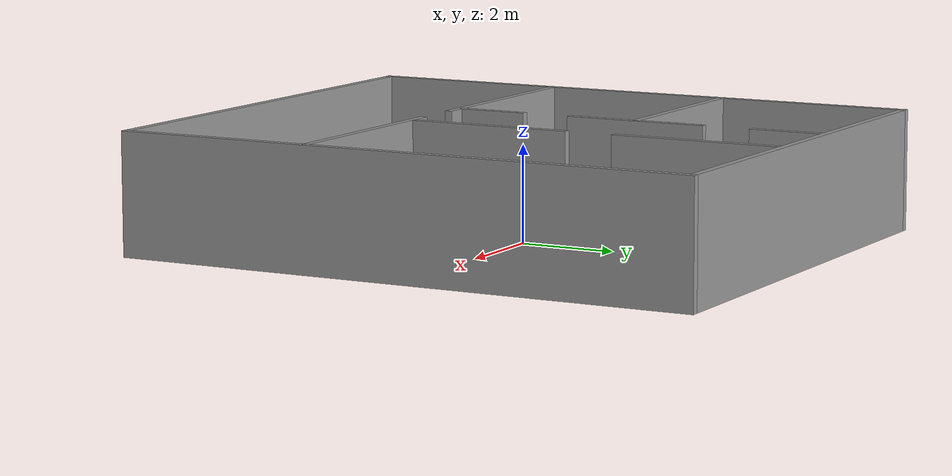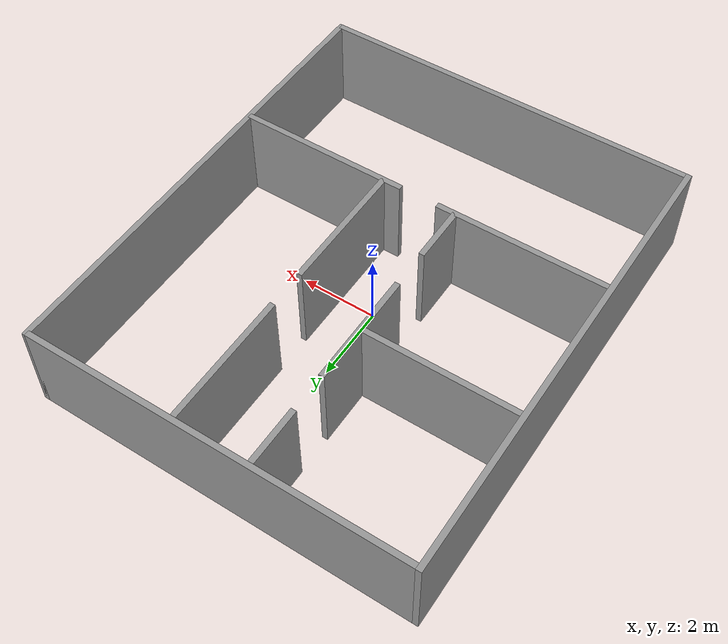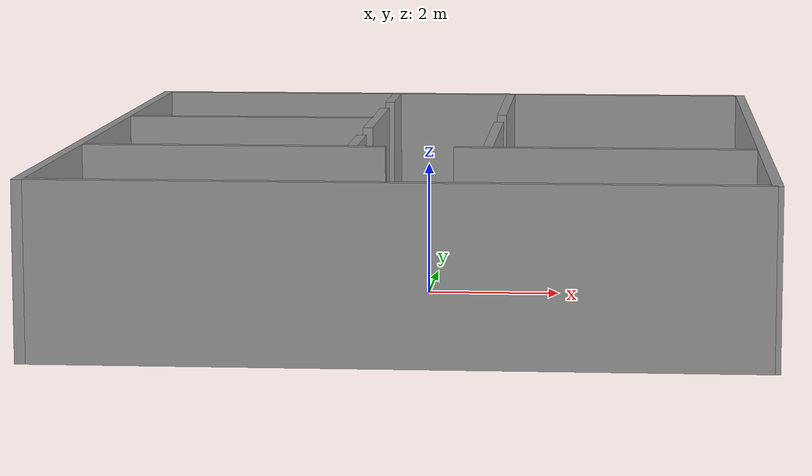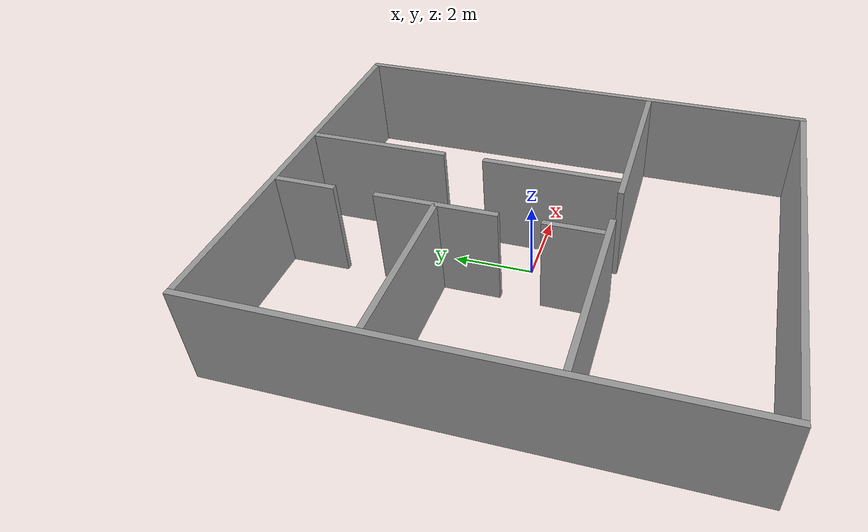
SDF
<?xml version='1.0'?>
<sdf version='1.6'>
  <model name='office'>
    <pose frame=''>0 0 0 0 0 0</pose>
    <link name='Wall_0'>
      <collision name='Wall_0_Collision'>
        <geometry>
          <box>
            <size>10 0.15 2.5</size>
          </box>
        </geometry>
        <pose frame=''>0 0 1.25 0 -0 0</pose>
      </collision>
      <visual name='Wall_0_Visual'>
        <pose frame=''>0 0 1.25 0 -0 0</pose>
        <geometry>
          <box>
            <size>10 0.15 2.5</size>
          </box>
        </geometry>
        <material>
          <script>
            <uri>file://media/materials/scripts/gazebo.material</uri>
            <name>Gazebo/Grey</name>
          </script>
          <ambient>1 1 1 1</ambient>
        </material>
        <meta>
          <layer>0</layer>
        </meta>
      </visual>
      <pose frame=''>0 -6.075 0 0 0 0</pose>
    </link>

    <link name='Wall_1'>
      <collision name='Wall_1_Collision'>
        <geometry>
          <box>
            <size>0.15 12.3 2.5</size>
          </box>
        </geometry>
        <pose frame=''>0 0 1.25 0 -0 0</pose>
      </collision>
      <visual name='Wall_1_Visual'>
        <pose frame=''>0 0 1.25 0 -0 0</pose>
        <geometry>
          <box>
            <size>0.15 12.3 2.5</size>
          </box>
        </geometry>
        <material>
          <script>
            <uri>file://media/materials/scripts/gazebo.material</uri>
            <name>Gazebo/Grey</name>
          </script>
          <ambient>1 1 1 1</ambient>
        </material>
        <meta>
          <layer>0</layer>
        </meta>
      </visual>
      <pose frame=''>5 0 0 0 0 0</pose>
    </link>

    <link name='Wall_2'>
      <collision name='Wall_2_Collision'>
        <geometry>
          <box>
            <size>10 0.15 2.5</size>
          </box>
        </geometry>
        <pose frame=''>0 0 1.25 0 -0 0</pose>
      </collision>
      <visual name='Wall_2_Visual'>
        <pose frame=''>0 0 1.25 0 -0 0</pose>
        <geometry>
          <box>
            <size>10 0.15 2.5</size>
          </box>
        </geometry>
        <material>
          <script>
            <uri>file://media/materials/scripts/gazebo.material</uri>
            <name>Gazebo/Grey</name>
          </script>
          <ambient>1 1 1 1</ambient>
        </material>
        <meta>
          <layer>0</layer>
        </meta>
      </visual>
      <pose frame=''>0 6.075 0 0 0 0</pose>
    </link>

     <link name='Wall_3'>
      <collision name='Wall_3_Collision'>
        <geometry>
          <box>
            <size>0.15 12 2.5</size>
          </box>
        </geometry>
        <pose frame=''>0 0 1.25 0 -0 0</pose>
      </collision>
      <visual name='Wall_3_Visual'>
        <pose frame=''>0 0 1.25 0 -0 0</pose>
        <geometry>
          <box>
            <size>0.15 12.3 2.5</size>
          </box>
        </geometry>
        <material>
          <script>
            <uri>file://media/materials/scripts/gazebo.material</uri>
            <name>Gazebo/Grey</name>
          </script>
          <ambient>1 1 1 1</ambient>
        </material>
        <meta>
          <layer>0</layer>
        </meta>
      </visual>
      <pose frame=''>-5.075 0 0 0 0 0</pose>
    </link>

    <link name='Wall_4'>
      <collision name='Wall_4_Collision'>
        <geometry>
          <box>
            <size>0.15 1.5 2.5</size>
          </box>
        </geometry>
        <pose frame=''>0 0 1.25 0 -0 0</pose>
      </collision>
      <visual name='Wall_4_Visual'>
        <pose frame=''>0 0 1.25 0 -0 0</pose>
        <geometry>
          <box>
            <size>0.15 1.5 2.5</size>
          </box>
        </geometry>
        <material>
          <script>
            <uri>file://media/materials/scripts/gazebo.material</uri>
            <name>Gazebo/Grey</name>
          </script>
          <ambient>1 1 1 1</ambient>
        </material>
        <meta>
          <layer>0</layer>
        </meta>
      </visual>
      <pose frame=''>-1 5.25 0 0 0 0</pose>
    </link>

    <link name='Wall_5'>
      <collision name='Wall_5_Collision'>
        <geometry>
          <box>
            <size>0.15 3 2.5</size>
          </box>
        </geometry>
        <pose frame=''>0 0 1.25 0 -0 0</pose>
      </collision>
      <visual name='Wall_5_Visual'>
        <pose frame=''>0 0 1.25 0 -0 0</pose>
        <geometry>
          <box>
            <size>0.15 3 2.5</size>
          </box>
        </geometry>
        <material>
          <script>
            <uri>file://media/materials/scripts/gazebo.material</uri>
            <name>Gazebo/Grey</name>
          </script>
          <ambient>1 1 1 1</ambient>
        </material>
        <meta>
          <layer>0</layer>
        </meta>
      </visual>
      <pose frame=''>-1 2 0 0 0 0</pose>
    </link>

    <link name='Wall_6'>
      <collision name='Wall_6_Collision'>
        <geometry>
          <box>
            <size>0.15 1.5 2.5</size>
          </box>
        </geometry>
        <pose frame=''>0 0 1.25 0 -0 0</pose>
      </collision>
      <visual name='Wall_6_Visual'>
        <pose frame=''>0 0 1.25 0 -0 0</pose>
        <geometry>
          <box>
            <size>0.15 1.5 2.5</size>
          </box>
        </geometry>
        <material>
          <script>
            <uri>file://media/materials/scripts/gazebo.material</uri>
            <name>Gazebo/Grey</name>
          </script>
          <ambient>1 1 1 1</ambient>
        </material>
        <meta>
          <layer>0</layer>
        </meta>
      </visual>
      <pose frame=''>-1 -1.25 0 0 0 0</pose>
    </link>

    <link name='Wall_7'>
      <collision name='Wall_7_Collision'>
        <geometry>
          <box>
            <size>0.15 3.5 2.5</size>
          </box>
        </geometry>
        <pose frame=''>0 0 1.25 0 -0 0</pose>
      </collision>
      <visual name='Wall_7_Visual'>
        <pose frame=''>0 0 1.25 0 -0 0</pose>
        <geometry>
          <box>
            <size>0.15 3.5 2.5</size>
          </box>
        </geometry>
        <material>
          <script>
            <uri>file://media/materials/scripts/gazebo.material</uri>
            <name>Gazebo/Grey</name>
          </script>
          <ambient>1 1 1 1</ambient>
        </material>
        <meta>
          <layer>0</layer>
        </meta>
      </visual>
      <pose frame=''>1 4.25 0 0 0 0</pose>
    </link>

    <link name='Wall_8'>
      <collision name='Wall_8_Collision'>
        <geometry>
          <box>
            <size>0.15 3.5 2.5</size>
          </box>
        </geometry>
        <pose frame=''>0 0 1.25 0 -0 0</pose>
      </collision>
      <visual name='Wall_8_Visual'>
        <pose frame=''>0 0 1.25 0 -0 0</pose>
        <geometry>
          <box>
            <size>0.15 3.5 2.5</size>
          </box>
        </geometry>
        <material>
          <script>
            <uri>file://media/materials/scripts/gazebo.material</uri>
            <name>Gazebo/Grey</name>
          </script>
          <ambient>1 1 1 1</ambient>
        </material>
        <meta>
          <layer>0</layer>
        </meta>
      </visual>
      <pose frame=''>1 -0.25 0 0 0 0</pose>
    </link>

    <link name='Wall_9'>
      <collision name='Wall_9_Collision'>
        <geometry>
          <box>
            <size>4 0.15 2.5</size>
          </box>
        </geometry>
        <pose frame=''>0 0 1.25 0 -0 0</pose>
      </collision>
      <visual name='Wall_9_Visual'>
        <pose frame=''>0 0 1.25 0 -0 0</pose>
        <geometry>
          <box>
            <size>4 0.15 2.5</size>
          </box>
        </geometry>
        <material>
          <script>
            <uri>file://media/materials/scripts/gazebo.material</uri>
            <name>Gazebo/Grey</name>
          </script>
          <ambient>1 1 1 1</ambient>
        </material>
        <meta>
          <layer>0</layer>
        </meta>
      </visual>
      <pose frame=''>-3 2 0 0 0 0</pose>
    </link>

    <link name='Wall_10'>
      <collision name='Wall_10_Collision'>
        <geometry>
          <box>
            <size>4.5 0.15 2.5</size>
          </box>
        </geometry>
        <pose frame=''>0 0 1.25 0 -0 0</pose>
      </collision>
      <visual name='Wall_10_Visual'>
        <pose frame=''>0 0 1.25 0 -0 0</pose>
        <geometry>
          <box>
            <size>4.5 0.15 2.5</size>
          </box>
        </geometry>
        <material>
          <script>
            <uri>file://media/materials/scripts/gazebo.material</uri>
            <name>Gazebo/Grey</name>
          </script>
          <ambient>1 1 1 1</ambient>
        </material>
        <meta>
          <layer>0</layer>
        </meta>
      </visual>
      <pose frame=''>-2.75 -2 0 0 0 0</pose>
    </link>

    <link name='Wall_11'>
      <collision name='Wall_11_Collision'>
        <geometry>
          <box>
            <size>4.5 0.15 2.5</size>
          </box>
        </geometry>
        <pose frame=''>0 0 1.25 0 -0 0</pose>
      </collision>
      <visual name='Wall_11_Visual'>
        <pose frame=''>0 0 1.25 0 -0 0</pose>
        <geometry>
          <box>
            <size>4.5 0.15 2.5</size>
          </box>
        </geometry>
        <material>
          <script>
            <uri>file://media/materials/scripts/gazebo.material</uri>
            <name>Gazebo/Grey</name>
          </script>
          <ambient>1 1 1 1</ambient>
        </material>
        <meta>
          <layer>0</layer>
        </meta>
      </visual>
      <pose frame=''>2.75 -2 0 0 0 0</pose>
    </link>

    <static>1</static>
  </model>
</sdf>
